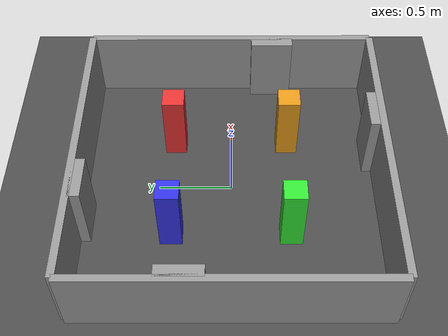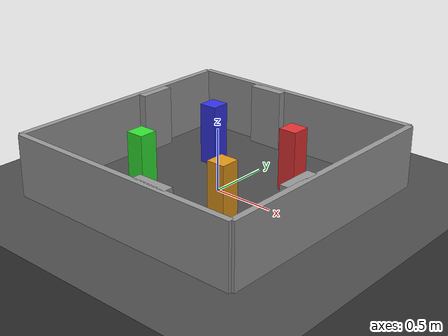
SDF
<?xml version="1.0" ?>
<sdf version="1.7">

  <world name="default">

    <gravity>0 0 -9.8</gravity>

    <magnetic_field>6e-6 2.3e-5 -4.2e-5</magnetic_field>

    <atmosphere type="adiabatic"/>

    <scene>
      <ambient>0.4 0.4 0.4 1</ambient>
      <background>0.7 0.7 0.7 1</background>
      <shadows>true</shadows>
    </scene>

    <physics name='1ms' type='ignored'>
      <max_step_size>0.001</max_step_size>
      <real_time_factor>1</real_time_factor>
      <real_time_update_rate>1000</real_time_update_rate>
    </physics>

    <plugin name='gz::sim::systems::Physics' filename='gz-sim-physics-system'/>
    <plugin name='gz::sim::systems::UserCommands' filename='gz-sim-user-commands-system'/>
    <plugin name='gz::sim::systems::SceneBroadcaster' filename='gz-sim-scene-broadcaster-system'/>
    <plugin name='gz::sim::systems::Contact' filename='gz-sim-contact-system'/>
    <plugin name='gz::sim::systems::Sensors' filename='gz-sim-sensors-system'>
      <render_engine>ogre2</render_engine>
    </plugin>

    <!-- LIGHT -->

    <light name="sun_light" type="directional">
      <cast_shadows>true</cast_shadows>
      <pose>0 0 20 0 0 0</pose>
      <diffuse>1 1 1 1</diffuse>
      <specular>0.2 0.2 0.2 1</specular>
      <attenuation>
        <range>1000</range>
        <constant>0.9</constant>
        <linear>0.01</linear>
        <quadratic>0.001</quadratic>
      </attenuation>
      <direction>-0.5 0.1 -1</direction>
    </light>

    <!-- GROUND -->

    <model name="ground">
      <static>true</static>
      <pose>0 0 -0.5 0 0 0</pose>
      <link name="ground_link">
        <collision name="ground_collision">
          <geometry>
            <box>
              <size>100 100 1</size>
            </box>
          </geometry>
          <surface>
            <friction>
              <ode>
                <mu>1.0</mu>
                <mu2>1.0</mu2>
              </ode>
            </friction>
            <contact><ode/></contact>
          </surface>
        </collision>
        <visual name="ground_visual">
          <geometry>
            <box>
              <size>100 100 1</size>
            </box>
          </geometry>
          <material>
            <ambient>0.3 0.3 0.3 1</ambient>
            <diffuse>0.3 0.3 0.3 1</diffuse>
          </material>
        </visual>
      </link>
    </model>

    <!-- WALLS -->

    <model name="south_wall">
      <static>true</static>
      <pose>0 -1.025 0.25 0 0 0</pose>
      <link name="link">
        <collision name="collision">
          <geometry><box><size>2.05 0.05 0.5</size></box></geometry>
        </collision>
        <visual name="visual">
          <geometry><box><size>2.05 0.05 0.5</size></box></geometry>
          <material>
            <ambient>0.5 0.5 0.5 1</ambient>
            <diffuse>0.6 0.6 0.6 1</diffuse>
          </material>
        </visual>
      </link>
    </model>

    <model name="north_wall">
      <static>true</static>
      <pose>0 1.025 0.25 0 0 0</pose>
      <link name="link">
        <collision name="collision">
          <geometry><box><size>2.05 0.05 0.5</size></box></geometry>
        </collision>
        <visual name="visual">
          <geometry><box><size>2.05 0.05 0.5</size></box></geometry>
          <material>
            <ambient>0.5 0.5 0.5 1</ambient>
            <diffuse>0.6 0.6 0.6 1</diffuse>
          </material>
        </visual>
      </link>
    </model>

    <model name="west_wall">
      <static>true</static>
      <pose>-1.025 0 0.25 0 0 0</pose>
      <link name="link">
        <collision name="collision">
          <geometry><box><size>0.05 2.05 0.5</size></box></geometry>
        </collision>
        <visual name="visual">
          <geometry><box><size>0.05 2.05 0.5</size></box></geometry>
          <material>
            <ambient>0.5 0.5 0.5 1</ambient>
            <diffuse>0.6 0.6 0.6 1</diffuse>
          </material>
        </visual>
      </link>
    </model>

    <model name="east_wall">
      <static>true</static>
      <pose>1.025 0 0.25 0 0 0</pose>
      <link name="link">
        <collision name="collision">
          <geometry><box><size>0.05 2.05 0.5</size></box></geometry>
        </collision>
        <visual name="visual">
          <geometry><box><size>0.05 2.05 0.5</size></box></geometry>
          <material>
            <ambient>0.5 0.5 0.5 1</ambient>
            <diffuse>0.6 0.6 0.6 1</diffuse>
          </material>
        </visual>
      </link>
    </model>

    <!-- WALL BAY PROTRUSIONS -->

    <!-- South wall bay: offset +0.3 m east of centre -->
    <model name="south_bay">
      <static>true</static>
      <pose>0.3 -0.975 0.25 0 0 0</pose>
      <link name="link">
        <collision name="collision">
          <geometry><box><size>0.3 0.08 0.5</size></box></geometry>
        </collision>
        <visual name="visual">
          <geometry><box><size>0.3 0.08 0.5</size></box></geometry>
          <material>
            <ambient>0.5 0.5 0.5 1</ambient>
            <diffuse>0.6 0.6 0.6 1</diffuse>
          </material>
        </visual>
      </link>
    </model>

    <!-- North wall bay: offset -0.3 m west of centre -->
    <model name="north_bay">
      <static>true</static>
      <pose>-0.3 0.975 0.25 0 0 0</pose>
      <link name="link">
        <collision name="collision">
          <geometry><box><size>0.3 0.08 0.5</size></box></geometry>
        </collision>
        <visual name="visual">
          <geometry><box><size>0.3 0.08 0.5</size></box></geometry>
          <material>
            <ambient>0.5 0.5 0.5 1</ambient>
            <diffuse>0.6 0.6 0.6 1</diffuse>
          </material>
        </visual>
      </link>
    </model>

    <!-- West wall bay: offset +0.3 m north of centre -->
    <model name="west_bay">
      <static>true</static>
      <pose>-0.975 0.3 0.25 0 0 0</pose>
      <link name="link">
        <collision name="collision">
          <geometry><box><size>0.08 0.3 0.5</size></box></geometry>
        </collision>
        <visual name="visual">
          <geometry><box><size>0.08 0.3 0.5</size></box></geometry>
          <material>
            <ambient>0.5 0.5 0.5 1</ambient>
            <diffuse>0.6 0.6 0.6 1</diffuse>
          </material>
        </visual>
      </link>
    </model>

    <!-- East wall bay: offset -0.3 m south of centre -->
    <model name="east_bay">
      <static>true</static>
      <pose>0.975 -0.3 0.25 0 0 0</pose>
      <link name="link">
        <collision name="collision">
          <geometry><box><size>0.08 0.3 0.5</size></box></geometry>
        </collision>
        <visual name="visual">
          <geometry><box><size>0.08 0.3 0.5</size></box></geometry>
          <material>
            <ambient>0.5 0.5 0.5 1</ambient>
            <diffuse>0.6 0.6 0.6 1</diffuse>
          </material>
        </visual>
      </link>
    </model>

    <!-- NE PILLAR (replaces original cube) -->
    <!-- Wider square box: 0.15 x 0.15 m base, 0.5 m tall.
         Larger flat faces give stronger, more consistent returns. -->

    <model name="cube">
      <static>true</static>
      <pose>0.4 0.4 0.25 0 0 0</pose>
      <link name="link">
        <self_collide>false</self_collide>
        <inertial>
          <mass>1.0</mass>
          <inertia>
            <ixx>0.166</ixx><iyy>0.166</iyy><izz>0.166</izz>
            <ixy>0</ixy><ixz>0</ixz><iyz>0</iyz>
          </inertia>
        </inertial>
        <collision name="collision">
          <geometry><box><size>0.15 0.15 0.5</size></box></geometry>
          <surface>
            <friction><ode><mu>1.0</mu><mu2>1.0</mu2></ode></friction>
            <contact><ode/></contact>
          </surface>
        </collision>
        <visual name="visual">
          <geometry><box><size>0.15 0.15 0.5</size></box></geometry>
          <material>
            <ambient>0.8 0.2 0.2 1</ambient>
            <diffuse>0.9 0.2 0.2 1</diffuse>
          </material>
        </visual>
      </link>
    </model>

    <!-- NW PILLAR (replaces cylinder) -->
    <!-- Square box instead of cylinder: 0.15 x 0.15 m.
         Flat faces give reliable multi-point returns vs the
         single-point returns a curved cylinder produces. -->

    <model name="cylinder">
      <static>true</static>
      <pose>-0.4 0.4 0.25 0 0 0</pose>
      <link name="link">
        <self_collide>false</self_collide>
        <inertial>
          <mass>1.0</mass>
          <inertia>
            <ixx>0.166</ixx><iyy>0.166</iyy><izz>0.166</izz>
            <ixy>0</ixy><ixz>0</ixz><iyz>0</iyz>
          </inertia>
        </inertial>
        <collision name="collision">
          <geometry><box><size>0.15 0.15 0.5</size></box></geometry>
          <surface>
            <friction><ode><mu>1.0</mu><mu2>1.0</mu2></ode></friction>
            <contact><ode/></contact>
          </surface>
        </collision>
        <visual name="visual">
          <geometry><box><size>0.15 0.15 0.5</size></box></geometry>
          <material>
            <ambient>0.2 0.2 0.8 1</ambient>
            <diffuse>0.2 0.2 0.9 1</diffuse>
          </material>
        </visual>
      </link>
    </model>

    <!-- SW PILLAR (replaces triangular prism) -->
    <!-- Wider square box: 0.15 x 0.15 m.
         The original prism's narrow apex and angled faces caused
         ambiguous returns. Flat orthogonal faces are far more
         reliable for scan matching. -->

    <model name="triangle_prism">
      <static>true</static>
      <pose>-0.4 -0.4 0.25 0 0 0</pose>
      <link name="link">
        <self_collide>false</self_collide>
        <inertial>
          <mass>1.0</mass>
          <inertia>
            <ixx>0.166</ixx><iyy>0.166</iyy><izz>0.166</izz>
            <ixy>0</ixy><ixz>0</ixz><iyz>0</iyz>
          </inertia>
        </inertial>
        <collision name="collision">
          <geometry><box><size>0.15 0.15 0.5</size></box></geometry>
          <surface>
            <friction><ode><mu>1.0</mu><mu2>1.0</mu2></ode></friction>
            <contact><ode/></contact>
          </surface>
        </collision>
        <visual name="visual">
          <geometry><box><size>0.15 0.15 0.5</size></box></geometry>
          <material>
            <ambient>0.2 0.8 0.2 1</ambient>
            <diffuse>0.2 0.9 0.2 1</diffuse>
          </material>
        </visual>
      </link>
    </model>

    <!-- SE PILLAR (new — fills previously empty corner) -->
    <!-- Fills the empty SE quadrant. Now all four quadrants have a
         feature, so the lidar always sees landmarks regardless of
         the robot's heading or position within the arena. -->

    <model name="se_pillar">
      <static>true</static>
      <pose>0.4 -0.4 0.25 0 0 0</pose>
      <link name="link">
        <self_collide>false</self_collide>
        <inertial>
          <mass>1.0</mass>
          <inertia>
            <ixx>0.166</ixx><iyy>0.166</iyy><izz>0.166</izz>
            <ixy>0</ixy><ixz>0</ixz><iyz>0</iyz>
          </inertia>
        </inertial>
        <collision name="collision">
          <geometry><box><size>0.15 0.15 0.5</size></box></geometry>
          <surface>
            <friction><ode><mu>1.0</mu><mu2>1.0</mu2></ode></friction>
            <contact><ode/></contact>
          </surface>
        </collision>
        <visual name="visual">
          <geometry><box><size>0.15 0.15 0.5</size></box></geometry>
          <material>
            <ambient>0.8 0.5 0.1 1</ambient>
            <diffuse>0.9 0.6 0.1 1</diffuse>
          </material>
        </visual>
      </link>
    </model>

  </world>

</sdf>
